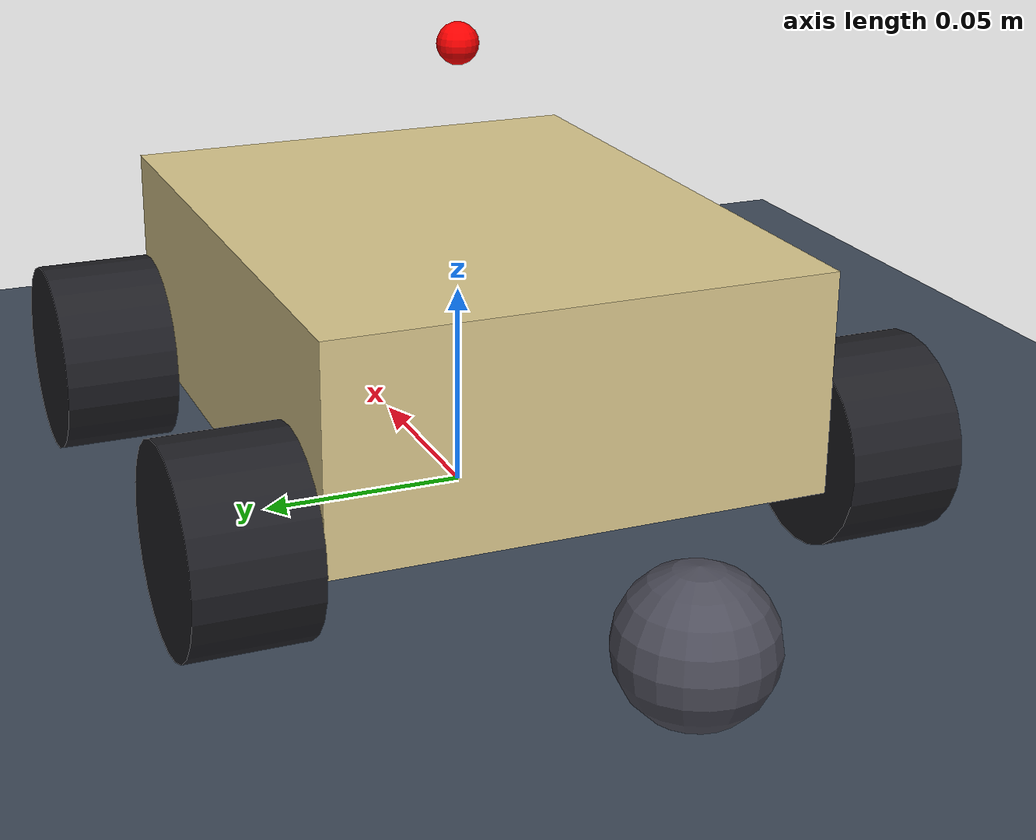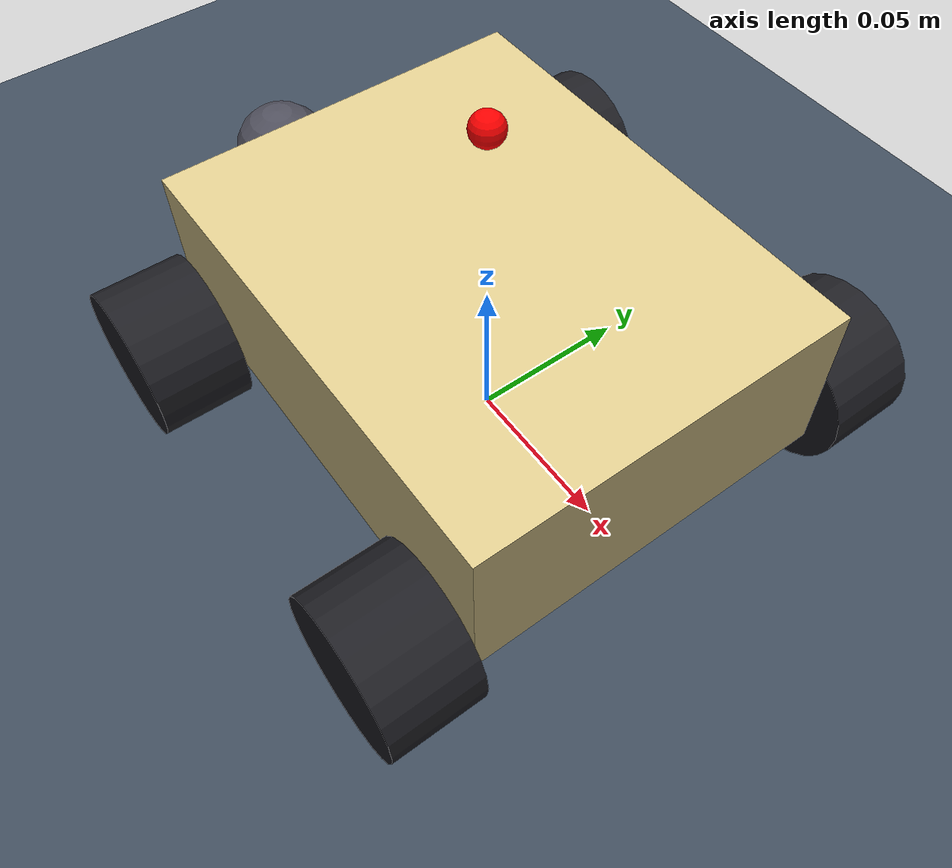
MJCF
<mujoco model="johnny5_chassis">
  <!-- GENERATED by build_mjcf.py from mechanical/freecad/params.csv -- do not edit by hand. -->
  <compiler angle="degree" autolimits="true"/>
  <option timestep="0.002" integrator="implicitfast" gravity="0 0 -9.81"/>

  <default>
    <geom condim="3" friction="1 0.01 0.0001"/>
    <joint damping="0"/>
  </default>

  <asset>
    <texture name="grid" type="2d" builtin="checker" rgb1="0.2 0.25 0.3" rgb2="0.28 0.33 0.4"
             width="512" height="512"/>
    <material name="grid" texture="grid" texrepeat="6 6" reflectance="0.1"/>
    <material name="trunk_mat" rgba="0.85 0.78 0.55 1"/>
    <material name="wheel_mat" rgba="0.12 0.12 0.14 1"/>
    <material name="caster_mat" rgba="0.3 0.3 0.35 1"/>
  </asset>

  <worldbody>
    <light name="top" pos="0 0 1.2" dir="0 0 -1" diffuse="0.8 0.8 0.8"/>
    <geom name="floor" type="plane" size="0 0 0.05" material="grid" friction="1 0.01 0.0001"/>

    <body name="trunk" pos="0 0 0.02350">
      <freejoint name="root"/>
      <!-- explicit inertial overrides geom-derived inertia: real mass rides taller than the tub -->
      <inertial pos="0 0 0.08650" mass="1.1970"
                diaginertia="0.004621 0.005476 0.003633"/>
      <site name="imu" pos="0 0 0.08650" size="0.005" rgba="1 0 0 1"/>

      <!-- chassis tub: collision + visual proxy (chassis-only; no arms/head) -->
      <geom name="tub" type="box" material="trunk_mat"
            pos="0 0 0.02070"
            size="0.07500 0.05900 0.02620"/>

      <!-- rear trailing caster, modelled as a rigid low-friction support sphere -->
      <geom name="caster" type="sphere" material="caster_mat"
            pos="-0.12500 0 -0.00650" size="0.01700"
            friction="0.25 0.005 0.0001"/>

      <!-- four track-contact wheels (front + rear per side), driven in L/R pairs -->
      <body name="wheel_rl" pos="-0.06000 0.07500 0">
        <joint name="wheel_rl_joint" type="hinge" axis="0 1 0" damping="0.00969"/>
        <geom name="wheel_rl_geom" type="cylinder" material="wheel_mat" fromto="0 -0.01400 0 0 0.01400 0" size="0.02350" mass="0.0285" friction="1.2 0.02 0.0001"/>
      </body>
      <body name="wheel_fl" pos="0.06000 0.07500 0">
        <joint name="wheel_fl_joint" type="hinge" axis="0 1 0" damping="0.00969"/>
        <geom name="wheel_fl_geom" type="cylinder" material="wheel_mat" fromto="0 -0.01400 0 0 0.01400 0" size="0.02350" mass="0.0285" friction="1.2 0.02 0.0001"/>
      </body>
      <body name="wheel_rr" pos="-0.06000 -0.07500 0">
        <joint name="wheel_rr_joint" type="hinge" axis="0 1 0" damping="0.00969"/>
        <geom name="wheel_rr_geom" type="cylinder" material="wheel_mat" fromto="0 -0.01400 0 0 0.01400 0" size="0.02350" mass="0.0285" friction="1.2 0.02 0.0001"/>
      </body>
      <body name="wheel_fr" pos="0.06000 -0.07500 0">
        <joint name="wheel_fr_joint" type="hinge" axis="0 1 0" damping="0.00969"/>
        <geom name="wheel_fr_geom" type="cylinder" material="wheel_mat" fromto="0 -0.01400 0 0 0.01400 0" size="0.02350" mass="0.0285" friction="1.2 0.02 0.0001"/>
      </body>
    </body>
  </worldbody>

  <actuator>
    <!-- ctrl in [-1,1] -> torque in [-stall/2, +stall/2] N*m per wheel; per side sums to stall -->
    <motor name="motor_rl" joint="wheel_rl_joint" gear="0.1250" ctrllimited="true" ctrlrange="-1 1"/>
    <motor name="motor_fl" joint="wheel_fl_joint" gear="0.1250" ctrllimited="true" ctrlrange="-1 1"/>
    <motor name="motor_rr" joint="wheel_rr_joint" gear="0.1250" ctrllimited="true" ctrlrange="-1 1"/>
    <motor name="motor_fr" joint="wheel_fr_joint" gear="0.1250" ctrllimited="true" ctrlrange="-1 1"/>
  </actuator>

  <sensor>
    <gyro name="imu_gyro" site="imu"/>
    <accelerometer name="imu_accel" site="imu"/>
    <framequat name="trunk_quat" objtype="site" objname="imu"/>
    <framepos name="trunk_pos" objtype="site" objname="imu"/>
    <framelinvel name="trunk_linvel" objtype="site" objname="imu"/>
    <jointvel name="enc_rl_vel" joint="wheel_rl_joint"/>
    <jointvel name="enc_rr_vel" joint="wheel_rr_joint"/>
    <jointpos name="enc_rl_pos" joint="wheel_rl_joint"/>
    <jointpos name="enc_rr_pos" joint="wheel_rr_joint"/>
  </sensor>
</mujoco>
